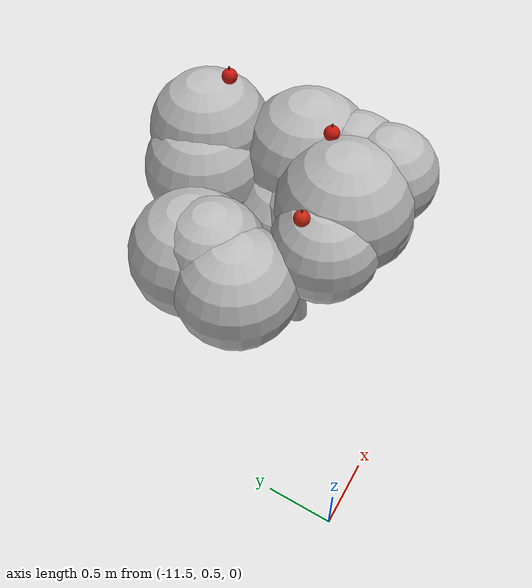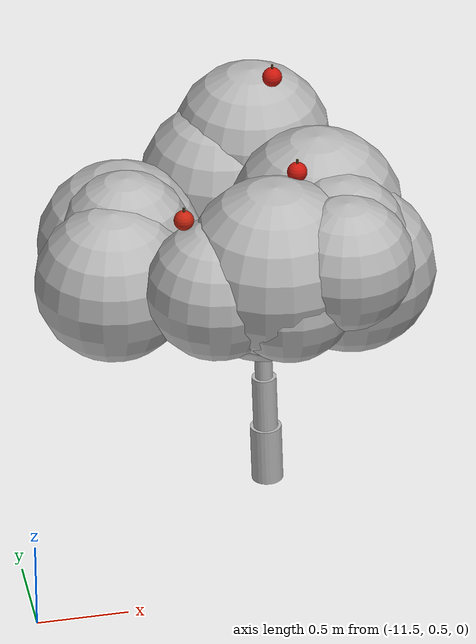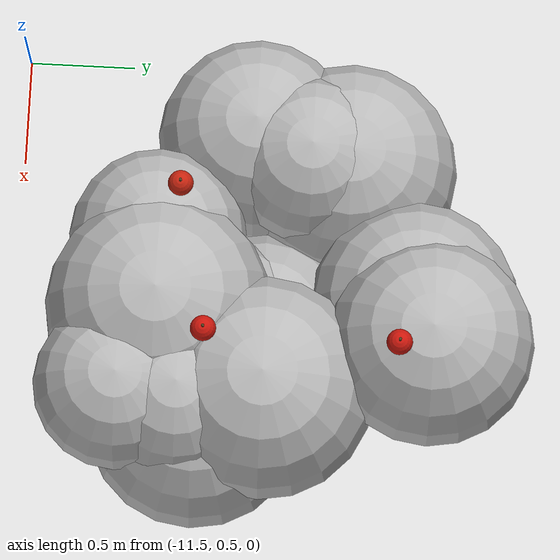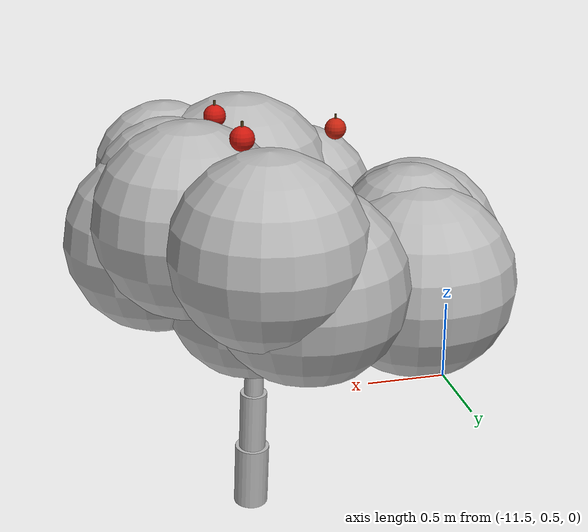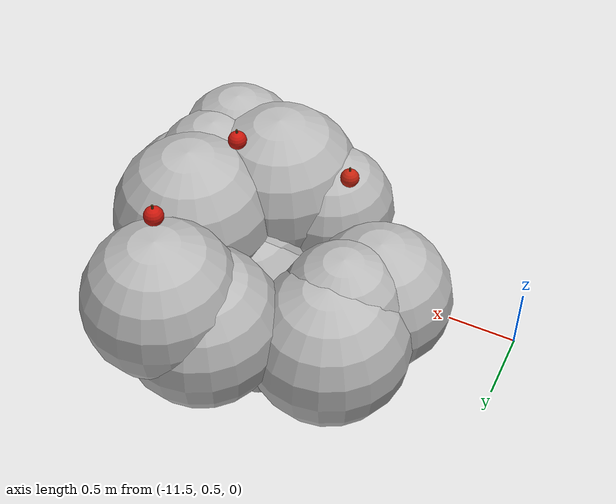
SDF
<sdf version="1.6">
 <world name="default">
  <model name="tree_r3_t3">
   <static>true</static>
   <link name="tree_r3_t3_trunk0">
    <pose>-9.9929 1.6244 0.1607 -0.0510 -0.0239 0</pose>
    <collision name="tree_r3_t3_trunk0_c">
     <geometry><cylinder><radius>0.0890</radius><length>0.3406</length></cylinder></geometry>
    </collision>
    <visual name="tree_r3_t3_trunk0_v">
     <geometry><cylinder><radius>0.0890</radius><length>0.3406</length></cylinder></geometry>
     <material>
      <script>
       <uri>model://orchard/materials/scripts</uri>
       <uri>model://orchard/materials/textures</uri>
       <name>Orchard/Bark</name>
      </script>
     </material>
    </visual>
   </link>
   <link name="tree_r3_t3_trunk1">
    <pose>-10.0006 1.6407 0.4820 -0.0510 -0.0239 0</pose>
    <visual name="tree_r3_t3_trunk1_v">
     <geometry><cylinder><radius>0.0694</radius><length>0.3406</length></cylinder></geometry>
     <material>
      <script>
       <uri>model://orchard/materials/scripts</uri>
       <uri>model://orchard/materials/textures</uri>
       <name>Orchard/Bark</name>
      </script>
     </material>
    </visual>
   </link>
   <link name="tree_r3_t3_trunk2">
    <pose>-10.0083 1.6571 0.8034 -0.0510 -0.0239 0</pose>
    <visual name="tree_r3_t3_trunk2_v">
     <geometry><cylinder><radius>0.0498</radius><length>0.3406</length></cylinder></geometry>
     <material>
      <script>
       <uri>model://orchard/materials/scripts</uri>
       <uri>model://orchard/materials/textures</uri>
       <name>Orchard/Bark</name>
      </script>
     </material>
    </visual>
   </link>
   <link name="tree_r3_t3_br0">
    <pose>-9.7398 1.5847 1.1856 0.0000 0.9084 -0.2879</pose>
    <visual name="tree_r3_t3_br0_v">
     <geometry><cylinder><radius>0.0338</radius><length>0.7204</length></cylinder></geometry>
     <material>
      <script>
       <uri>model://orchard/materials/scripts</uri>
       <uri>model://orchard/materials/textures</uri>
       <name>Orchard/Bark</name>
      </script>
     </material>
    </visual>
   </link>
   <link name="tree_r3_t3_br1">
    <pose>-10.0203 1.9223 1.2385 0.0000 0.7529 1.6026</pose>
    <visual name="tree_r3_t3_br1_v">
     <geometry><cylinder><radius>0.0225</radius><length>0.7520</length></cylinder></geometry>
     <material>
      <script>
       <uri>model://orchard/materials/scripts</uri>
       <uri>model://orchard/materials/textures</uri>
       <name>Orchard/Bark</name>
      </script>
     </material>
    </visual>
   </link>
   <link name="tree_r3_t3_br2">
    <pose>-10.3238 1.7699 1.2094 0.0000 0.9295 2.8179</pose>
    <visual name="tree_r3_t3_br2_v">
     <geometry><cylinder><radius>0.0229</radius><length>0.8203</length></cylinder></geometry>
     <material>
      <script>
       <uri>model://orchard/materials/scripts</uri>
       <uri>model://orchard/materials/textures</uri>
       <name>Orchard/Bark</name>
      </script>
     </material>
    </visual>
   </link>
   <link name="tree_r3_t3_br3">
    <pose>-10.2205 1.4014 1.1406 0.0000 1.0874 4.0441</pose>
    <visual name="tree_r3_t3_br3_v">
     <geometry><cylinder><radius>0.0235</radius><length>0.7596</length></cylinder></geometry>
     <material>
      <script>
       <uri>model://orchard/materials/scripts</uri>
       <uri>model://orchard/materials/textures</uri>
       <name>Orchard/Bark</name>
      </script>
     </material>
    </visual>
   </link>
   <link name="tree_r3_t3_br4">
    <pose>-9.9480 1.4798 1.1661 0.0000 0.7711 5.0454</pose>
    <visual name="tree_r3_t3_br4_v">
     <geometry><cylinder><radius>0.0262</radius><length>0.5635</length></cylinder></geometry>
     <material>
      <script>
       <uri>model://orchard/materials/scripts</uri>
       <uri>model://orchard/materials/textures</uri>
       <name>Orchard/Bark</name>
      </script>
     </material>
    </visual>
   </link>
   <link name="tree_r3_t3_fol0">
    <pose>-10.0242 1.5442 1.3969 0 0 0</pose>
    <visual name="tree_r3_t3_fol0_v">
     <geometry><sphere><radius>0.3602</radius></sphere></geometry>
     <material>
      <script>
       <uri>model://orchard/materials/scripts</uri>
       <uri>model://orchard/materials/textures</uri>
       <name>Orchard/Foliage1</name>
      </script>
     </material>
    </visual>
   </link>
   <link name="tree_r3_t3_fol1">
    <pose>-9.6464 1.3558 1.6779 0 0 0</pose>
    <visual name="tree_r3_t3_fol1_v">
     <geometry><sphere><radius>0.3773</radius></sphere></geometry>
     <material>
      <script>
       <uri>model://orchard/materials/scripts</uri>
       <uri>model://orchard/materials/textures</uri>
       <name>Orchard/Foliage2</name>
      </script>
     </material>
    </visual>
   </link>
   <link name="tree_r3_t3_fol2">
    <pose>-9.9143 2.4244 1.7372 0 0 0</pose>
    <visual name="tree_r3_t3_fol2_v">
     <geometry><sphere><radius>0.4482</radius></sphere></geometry>
     <material>
      <script>
       <uri>model://orchard/materials/scripts</uri>
       <uri>model://orchard/materials/textures</uri>
       <name>Orchard/Foliage1</name>
      </script>
     </material>
    </visual>
   </link>
   <link name="tree_r3_t3_fol3">
    <pose>-9.6966 1.7164 1.6484 0 0 0</pose>
    <visual name="tree_r3_t3_fol3_v">
     <geometry><sphere><radius>0.4839</radius></sphere></geometry>
     <material>
      <script>
       <uri>model://orchard/materials/scripts</uri>
       <uri>model://orchard/materials/textures</uri>
       <name>Orchard/Foliage1</name>
      </script>
     </material>
    </visual>
   </link>
   <link name="tree_r3_t3_fol4">
    <pose>-10.7322 2.0507 1.3732 0 0 0</pose>
    <visual name="tree_r3_t3_fol4_v">
     <geometry><sphere><radius>0.4729</radius></sphere></geometry>
     <material>
      <script>
       <uri>model://orchard/materials/scripts</uri>
       <uri>model://orchard/materials/textures</uri>
       <name>Orchard/Foliage1</name>
      </script>
     </material>
    </visual>
   </link>
   <link name="tree_r3_t3_fol5">
    <pose>-10.7362 1.8807 1.5269 0 0 0</pose>
    <visual name="tree_r3_t3_fol5_v">
     <geometry><sphere><radius>0.3686</radius></sphere></geometry>
     <material>
      <script>
       <uri>model://orchard/materials/scripts</uri>
       <uri>model://orchard/materials/textures</uri>
       <name>Orchard/Foliage1</name>
      </script>
     </material>
    </visual>
   </link>
   <link name="tree_r3_t3_fol6">
    <pose>-9.5696 1.4274 1.4632 0 0 0</pose>
    <visual name="tree_r3_t3_fol6_v">
     <geometry><sphere><radius>0.4716</radius></sphere></geometry>
     <material>
      <script>
       <uri>model://orchard/materials/scripts</uri>
       <uri>model://orchard/materials/textures</uri>
       <name>Orchard/Foliage2</name>
      </script>
     </material>
    </visual>
   </link>
   <link name="tree_r3_t3_fol7">
    <pose>-10.3551 1.2245 1.5412 0 0 0</pose>
    <visual name="tree_r3_t3_fol7_v">
     <geometry><sphere><radius>0.3893</radius></sphere></geometry>
     <material>
      <script>
       <uri>model://orchard/materials/scripts</uri>
       <uri>model://orchard/materials/textures</uri>
       <name>Orchard/Foliage1</name>
      </script>
     </material>
    </visual>
   </link>
   <link name="tree_r3_t3_fol8">
    <pose>-9.9817 1.1205 1.5158 0 0 0</pose>
    <visual name="tree_r3_t3_fol8_v">
     <geometry><sphere><radius>0.3629</radius></sphere></geometry>
     <material>
      <script>
       <uri>model://orchard/materials/scripts</uri>
       <uri>model://orchard/materials/textures</uri>
       <name>Orchard/Foliage0</name>
      </script>
     </material>
    </visual>
   </link>
   <link name="tree_r3_t3_fol9">
    <pose>-10.1040 2.3563 1.5347 0 0 0</pose>
    <visual name="tree_r3_t3_fol9_v">
     <geometry><sphere><radius>0.4582</radius></sphere></geometry>
     <material>
      <script>
       <uri>model://orchard/materials/scripts</uri>
       <uri>model://orchard/materials/textures</uri>
       <name>Orchard/Foliage1</name>
      </script>
     </material>
    </visual>
   </link>
   <link name="tree_r3_t3_fol10">
    <pose>-10.8517 1.6329 1.3948 0 0 0</pose>
    <visual name="tree_r3_t3_fol10_v">
     <geometry><sphere><radius>0.4380</radius></sphere></geometry>
     <material>
      <script>
       <uri>model://orchard/materials/scripts</uri>
       <uri>model://orchard/materials/textures</uri>
       <name>Orchard/Foliage1</name>
      </script>
     </material>
    </visual>
   </link>
   <link name="tree_r3_t3_fol11">
    <pose>-9.6720 1.0979 1.7015 0 0 0</pose>
    <visual name="tree_r3_t3_fol11_v">
     <geometry><sphere><radius>0.3702</radius></sphere></geometry>
     <material>
      <script>
       <uri>model://orchard/materials/scripts</uri>
       <uri>model://orchard/materials/textures</uri>
       <name>Orchard/Foliage1</name>
      </script>
     </material>
    </visual>
   </link>
   <link name="tree_r3_t3_fol12">
    <pose>-10.0003 1.6981 1.2494 0 0 0</pose>
    <visual name="tree_r3_t3_fol12_v">
     <geometry><sphere><radius>0.4452</radius></sphere></geometry>
     <material>
      <script>
       <uri>model://orchard/materials/scripts</uri>
       <uri>model://orchard/materials/textures</uri>
       <name>Orchard/Foliage1</name>
      </script>
     </material>
    </visual>
   </link>
   <link name="tree_r3_t3_fol13">
    <pose>-10.0332 1.2473 1.6346 0 0 0</pose>
    <visual name="tree_r3_t3_fol13_v">
     <geometry><sphere><radius>0.4922</radius></sphere></geometry>
     <material>
      <script>
       <uri>model://orchard/materials/scripts</uri>
       <uri>model://orchard/materials/textures</uri>
       <name>Orchard/Foliage2</name>
      </script>
     </material>
    </visual>
   </link>
   <link name="tree_r3_t3_ap0">
    <pose>-9.8290 2.2812 2.2061 0 0 0</pose>
    <visual name="tree_r3_t3_ap0_v">
     <geometry><sphere><radius>0.0550</radius></sphere></geometry>
     <material>
      <ambient>0.320 0.036 0.020 1.00</ambient>
      <diffuse>0.800 0.090 0.050 1.00</diffuse>
      <specular>0.45 0.35 0.32 1</specular>
     </material>
    </visual>
   </link>
   <link name="tree_r3_t3_st0">
    <pose>-9.8290 2.2812 2.2583 0 0 0</pose>
    <visual name="tree_r3_t3_st0_v">
     <geometry><cylinder><radius>0.0060</radius><length>0.0500</length></cylinder></geometry>
     <material><ambient>0.128 0.096 0.040 1.00</ambient><diffuse>0.320 0.240 0.100 1.00</diffuse></material>
    </visual>
   </link>
   <link name="tree_r3_t3_ap1">
    <pose>-9.8674 1.4569 2.0820 0 0 0</pose>
    <visual name="tree_r3_t3_ap1_v">
     <geometry><sphere><radius>0.0550</radius></sphere></geometry>
     <material>
      <ambient>0.320 0.036 0.020 1.00</ambient>
      <diffuse>0.800 0.090 0.050 1.00</diffuse>
      <specular>0.45 0.35 0.32 1</specular>
     </material>
    </visual>
   </link>
   <link name="tree_r3_t3_st1">
    <pose>-9.8674 1.4569 2.1343 0 0 0</pose>
    <visual name="tree_r3_t3_st1_v">
     <geometry><cylinder><radius>0.0060</radius><length>0.0500</length></cylinder></geometry>
     <material><ambient>0.128 0.096 0.040 1.00</ambient><diffuse>0.320 0.240 0.100 1.00</diffuse></material>
    </visual>
   </link>
   <link name="tree_r3_t3_ap2">
    <pose>-10.5175 1.3236 1.9367 0 0 0</pose>
    <visual name="tree_r3_t3_ap2_v">
     <geometry><sphere><radius>0.0550</radius></sphere></geometry>
     <material>
      <ambient>0.312 0.056 0.024 1.00</ambient>
      <diffuse>0.780 0.140 0.060 1.00</diffuse>
      <specular>0.45 0.35 0.32 1</specular>
     </material>
    </visual>
   </link>
   <link name="tree_r3_t3_st2">
    <pose>-10.5175 1.3236 1.9889 0 0 0</pose>
    <visual name="tree_r3_t3_st2_v">
     <geometry><cylinder><radius>0.0060</radius><length>0.0500</length></cylinder></geometry>
     <material><ambient>0.128 0.096 0.040 1.00</ambient><diffuse>0.320 0.240 0.100 1.00</diffuse></material>
    </visual>
   </link>
  </model>
 </world>
</sdf>
